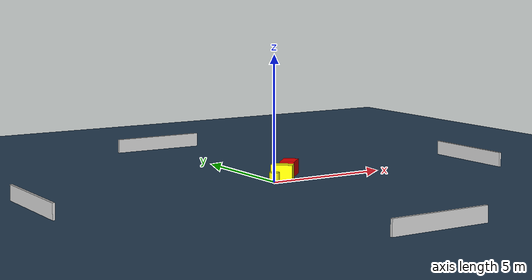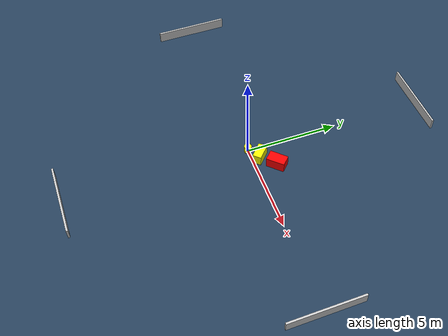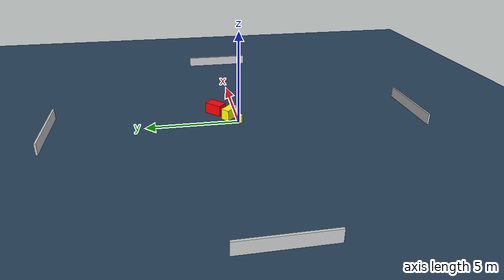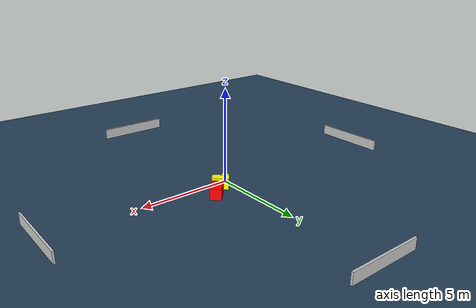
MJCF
<?xml version="1.0" ?>
<mujoco model="generated_environment">
  <option timestep="0.01" integrator="RK4" cone="elliptic"/>
  <default>
    <geom density="1"/>
  </default>
  <asset>
    <texture builtin="gradient" height="3072" name="skybox" rgb1="0.3 0.5 0.7" rgb2="0 0 0" type="skybox" width="512"/>
    <texture builtin="checker" height="300" name="groundplane" rgb1="0.2 0.3 0.4" rgb2="0.1 0.2 0.3" type="2d" width="300"/>
    <material name="groundplane" reflectance="0.2" texrepeat="5 5" texture="groundplane"/>
  </asset>
  <worldbody>
    <light dir="0 0 -1" directional="true" pos="0 0 1.5"/>
    <geom condim="3" friction="0.5 0.005 0.001" material="groundplane" name="floor" pos="0 0 0" size="0 0 0.05" type="plane"/>
    <body name="walls">
      <geom name="wall_1" condim="4" pos="-10.0 0.0 0.3" rgba="0.800000011920929 0.800000011920929 0.800000011920929 1.0" size="0.05 2.0 0.3" type="box"/>
      <geom name="wall_2" condim="4" pos="10.0 0.0 0.3" rgba="0.800000011920929 0.800000011920929 0.800000011920929 1.0" size="0.05 2.0 0.3" type="box"/>
      <geom name="wall_3" condim="4" pos="0.0 -10.0 0.3" rgba="0.800000011920929 0.800000011920929 0.800000011920929 1.0" size="2.0 0.05 0.3" type="box"/>
      <geom name="wall_4" condim="4" pos="0.0 10.0 0.3" rgba="0.800000011920929 0.800000011920929 0.800000011920929 1.0" size="2.0 0.05 0.3" type="box"/>
    </body>
    <body name="robot">
      <joint name="joint_x" type="slide" pos="0 0 0" axis="1 0 0"/>
      <joint name="joint_y" type="slide" pos="0 0 0" axis="0 1 0"/>
      <geom name="robot" type="cylinder" pos="0.0 0.0 0.2" size="0.2 0.2 0.0" mass="5.0" friction="1.0 0.005 0.0001" condim="4" rgba="1.0 1.0 0.0 1.0"/>
    </body>
    <body name="obstacle_1_movable">
      <geom name="obstacle_1_movable" condim="4" pos="0.6461278982331738 0.42893022016468474 0.3" euler="0 0 46.93578609445514" friction="0.0 0.005 0.001" rgba="1.0 1.0 0.0 1.0" size="0.23366936420903994 0.44167417554921 0.3" type="box" mass="0.1"/>
      <joint type="free"/>
    </body>
    <body name="obstacle_2_static">
      <geom name="obstacle_2_static" condim="4" pos="1.4028939598790704 1.1064203934891925 0.3" euler="0 0 315.8260087790179" friction="0.0 0.005 0.001" rgba="1.0 0.0 0.0 1.0" size="0.29863161063664306 0.49560770532224 0.3" type="box"/>
    </body>
  </worldbody>
  <actuator>
    <motor name="actuator_x" joint="joint_x" gear="1" ctrlrange="-1 1"/>
    <motor name="actuator_y" joint="joint_y" gear="1" ctrlrange="-1 1"/>
  </actuator>
</mujoco>
